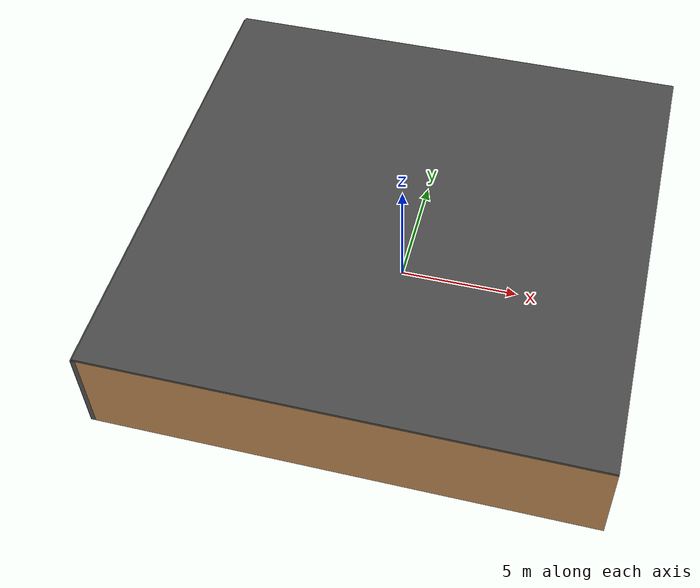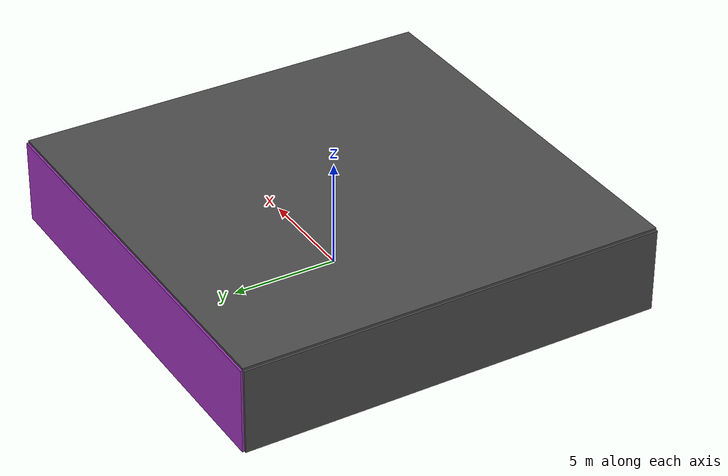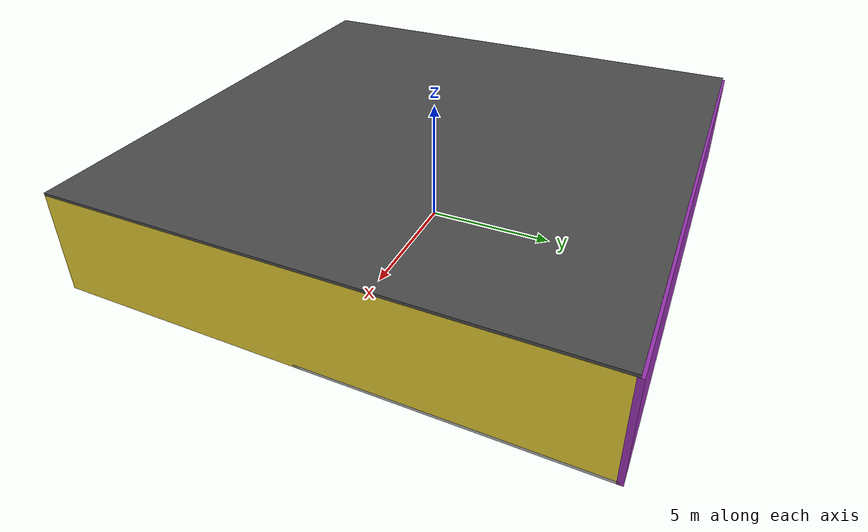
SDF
<sdf version="1.4">
 <world name="default">
  <physics type="ode">
   <max_step_size>0.001</max_step_size>
   <real_time_factor>1</real_time_factor>
   <real_time_update_rate>1000</real_time_update_rate>
   <gravity>0 0 -9.8</gravity>
  </physics>
  <scene><ambient>0.4 0.4 0.4 1</ambient><background>0.7 0.7 0.7 1</background><shadows>1</shadows></scene>
  <model name="Surrounding">
   <static>1</static>
   <link name="Ceiling">
    <collision name="Ceiling_Collision"><geometry><box><size>20 20 0.1</size></box></geometry></collision>
    <visual name="Ceiling_Visual">
     <geometry><box><size>20 20 0.1</size></box></geometry>
     <material>
      <script><uri>file://media/materials/scripts/gazebo.material</uri><name>Gazebo/DarkGrey</name></script>
     </material>
    </visual>
    <pose>0 0 4.05 0 0 0</pose>
   </link>
   <link name="Wall_South">
    <collision name="Wall_South_Collision">
     <geometry><box><size>20 0 4</size></box></geometry>
     <pose>0 0 2 0 -0 0</pose>
    </collision>
    <visual name="Wall_South_Visual">
     <pose>0 0 2 0 -0 0</pose>
     <geometry><box><size>20 0 4</size></box></geometry>
     <material>
      <script><uri>file://media/materials/scripts/gazebo.material</uri><name>Gazebo/WoodPallet</name></script>
     </material>
    </visual>
    <velocity_decay><linear>0</linear><angular>0</angular></velocity_decay>
    <pose>0 -10 0 0 -0 0</pose>
   </link>
   <link name="Wall_East">
    <collision name="Wall_21_Collision">
     <geometry><box><size>20 0 4</size></box></geometry>
     <pose>0 0 2 0 -0 0</pose>
    </collision>
    <visual name="Wall_21_Visual">
     <pose>0 0 2 0 -0 0</pose>
     <geometry><box><size>20 0 4</size></box></geometry>
     <material>
      <script><uri>file://media/materials/scripts/gazebo.material</uri><name>Gazebo/ZincYellow</name></script>
     </material>
    </visual>
    <velocity_decay><linear>0</linear><angular>0</angular></velocity_decay>
    <pose>10 0 0 0 -0 1.5708</pose>
   </link>
   <link name="Wall_North">
    <collision name="Wall_22_Collision">
     <geometry><box><size>20 0.2 4</size></box></geometry>
     <pose>0 0 2 0 -0 0</pose>
    </collision>
    <visual name="Wall_22_Visual">
     <pose>0 0 2 0 -0 0</pose>
     <geometry><box><size>20 0.2 4</size></box></geometry>
     <material>
      <script><uri>file://media/materials/scripts/gazebo.material</uri><name>Gazebo/PurpleGlow</name></script>
     </material>
    </visual>
    <velocity_decay><linear>0</linear><angular>0</angular></velocity_decay>
    <pose>0 10 0 0 -0 0</pose>
   </link>
   <link name="Wall_West">
    <collision name="Wall_23_Collision">
     <geometry><box><size>20 0.2 4</size></box></geometry>
     <pose>0 0 2 0 -0 0</pose>
    </collision>
    <visual name="Wall_23_Visual">
     <pose>0 0 2 0 -0 0</pose>
     <geometry><box><size>20 0.2 4</size></box></geometry>
     <material>
      <script><uri>file://media/materials/scripts/gazebo.material</uri><name>Gazebo/Road</name></script>
     </material>
    </visual>
    <velocity_decay><linear>0</linear><angular>0</angular></velocity_decay>
    <pose>-10 0 0 0 0 -1.5708</pose>
   </link>
   <link name="Ground_link">
    <collision name="collision">
     <pose>0 0 .05 0 -0 0</pose>
     <geometry><box><size>20 20 0.1</size></box></geometry>
    </collision>
    <visual name="visual">
     <pose>0 0 .05 0 -0 0</pose>
     <geometry><box><size>20 20 0.1</size></box></geometry>
     <material>
      <script><uri>file://media/materials/scripts/gazebo.material</uri><name>Gazebo/PioneerBody</name></script>
     </material>
    </visual>
   </link>
   <static>1</static>
  </model>
  <spherical_coordinates>
   <surface_model>EARTH_WGS84</surface_model>
   <latitude_deg>0</latitude_deg>
   <longitude_deg>0</longitude_deg>
   <elevation>0</elevation>
   <heading_deg>0</heading_deg>
  </spherical_coordinates>
  <light name="lightball_0" type="diffuse">
   <diffuse>0.8 0.8 0.8 1</diffuse>
   <specular>0.2 0.2 0.2 1</specular>
   <attenuation>
    <range>100</range>
    <constant>0.7</constant>
    <linear>0.01</linear>
    <quadratic>0.001</quadratic>
   </attenuation>
   <direction>-0.5 0.1 -0.9</direction>
   <pose>-7.54292767034 -4.13270267252 0.706684938992 0 0 0</pose>
  </light>
  <light name="lightball_1" type="diffuse">
   <diffuse>0.8 0.8 0.8 1</diffuse>
   <specular>0.2 0.2 0.2 1</specular>
   <attenuation>
    <range>100</range>
    <constant>0.7</constant>
    <linear>0.01</linear>
    <quadratic>0.001</quadratic>
   </attenuation>
   <direction>-0.5 0.1 -0.9</direction>
   <pose>4.55095508575 -6.15621156155 3.57149684272 0 0 0</pose>
  </light>
  <light name="lightball_2" type="diffuse">
   <diffuse>0.8 0.8 0.8 1</diffuse>
   <specular>0.2 0.2 0.2 1</specular>
   <attenuation>
    <range>100</range>
    <constant>0.7</constant>
    <linear>0.01</linear>
    <quadratic>0.001</quadratic>
   </attenuation>
   <direction>-0.5 0.1 -0.9</direction>
   <pose>-7.43275579764 -3.80731818884 3.63153314545 0 0 0</pose>
  </light>
  <light name="lightball_3" type="diffuse">
   <diffuse>0.8 0.8 0.8 1</diffuse>
   <specular>0.2 0.2 0.2 1</specular>
   <attenuation>
    <range>100</range>
    <constant>0.7</constant>
    <linear>0.01</linear>
    <quadratic>0.001</quadratic>
   </attenuation>
   <direction>-0.5 0.1 -0.9</direction>
   <pose>-2.41612080505 -2.08616503591 3.5857431071 0 0 0</pose>
  </light>
  <light name="lightball_4" type="diffuse">
   <diffuse>0.8 0.8 0.8 1</diffuse>
   <specular>0.2 0.2 0.2 1</specular>
   <attenuation>
    <range>100</range>
    <constant>0.7</constant>
    <linear>0.01</linear>
    <quadratic>0.001</quadratic>
   </attenuation>
   <direction>-0.5 0.1 -0.9</direction>
   <pose>-6.37357638737 4.15255106938 0.607191106311 0 0 0</pose>
  </light>
  <light name="lightball_5" type="diffuse">
   <diffuse>0.8 0.8 0.8 1</diffuse>
   <specular>0.2 0.2 0.2 1</specular>
   <attenuation>
    <range>100</range>
    <constant>0.7</constant>
    <linear>0.01</linear>
    <quadratic>0.001</quadratic>
   </attenuation>
   <direction>-0.5 0.1 -0.9</direction>
   <pose>-3.27498823409 -5.93491398683 2.4038400561 0 0 0</pose>
  </light>
  <include>
   <uri>model://construction_cone</uri>
   <pose>-8.30307373281 6.48191655841 0 0 0 2.94104813404</pose>
  </include>
  <include>
   <uri>model://robocup_3Dsim_goal</uri>
   <pose>-4.62297208025 -4.75328253744 0 0 0 1.80779782144</pose>
  </include>
  <include>
   <uri>model://robocup_3Dsim_goal</uri>
   <pose>3.76930694897 -2.13119583792 0 0 0 1.52862400519</pose>
  </include>
 </world>
</sdf>

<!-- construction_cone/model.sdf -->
<sdf version="1.5">
  <model name="Construction Cone">
    <link name="link">
      <collision name="collision">
        <geometry>
          <mesh>
            <scale>10 10 10</scale>
            <uri>file://isr-testbed/construction_cone/meshes/construction_cone.dae</uri>
          </mesh>
        </geometry>
      </collision>
      <visual name="visual">
        <geometry>
          <mesh>
            <scale>10 10 10</scale>
            <uri>file://isr-testbed/construction_cone/meshes/construction_cone.dae</uri>
          </mesh>
        </geometry>
      </visual>
    </link>
  </model>
</sdf>

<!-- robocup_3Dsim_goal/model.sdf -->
<sdf version="1.5">
  <model name="robocup_3d_goal">
    <static>true</static>
    <link name="left_post">
      <pose>0 1.05 0.45 0 0 0</pose>
      <collision name="collision">
        <geometry>
          <cylinder>
            <radius>0.05</radius>
            <length>0.9</length>
          </cylinder>
        </geometry>
      </collision>
      <visual name="visual">
        <geometry>
          <cylinder>
            <radius>0.05</radius>
            <length>0.9</length>
          </cylinder>
        </geometry>
        <material>
          <script>
            <uri>file://media/materials/scripts/gazebo.material</uri>
            <name>Gazebo/ZincYellow</name>
          </script>
        </material>
      </visual>
    </link>
    <link name="left_support_horiz_lower">
      <pose>0.30 1.05 0.01 0 0 0</pose>
      <collision name="collision">
        <geometry>
          <box>
            <size>0.50 0.02 0.02</size>
          </box>
        </geometry>
      </collision>
      <visual name="visual">
        <geometry>
          <box>
            <size>0.50 0.02 0.02</size>
          </box>
        </geometry>
        <material>
          <script>
            <uri>file://media/materials/scripts/gazebo.material</uri>
            <name>Gazebo/White</name>
          </script>
        </material>
      </visual>
    </link>
    <link name="left_support_horiz_upper">
      <pose>0.30 1.05 0.79 0 0 0</pose>
      <collision name="collision">
        <geometry>
          <box>
            <size>0.50 0.02 0.02</size>
          </box>
        </geometry>
      </collision>
      <visual name="visual">
        <geometry>
          <box>
            <size>0.50 0.02 0.02</size>
          </box>
        </geometry>
        <material>
          <script>
            <uri>file://media/materials/scripts/gazebo.material</uri>
            <name>Gazebo/White</name>
          </script>
        </material>
      </visual>
    </link>
    <link name="left_support_vertical">
      <pose>0.56 1.05 0.4 0 1.5708 0</pose>
      <collision name="collision">
        <geometry>
          <box>
            <size>0.80 0.02 0.02</size>
          </box>
        </geometry>
      </collision>
      <visual name="visual">
        <geometry>
          <box>
            <size>0.80 0.02 0.02</size>
          </box>
        </geometry>
        <material>
          <script>
            <uri>file://media/materials/scripts/gazebo.material</uri>
            <name>Gazebo/White</name>
          </script>
        </material>
      </visual>
    </link>
    <link name="right_support_horiz_lower">
      <pose>0.30 -1.05 0.01 0 0 0</pose>
      <collision name="collision">
        <geometry>
          <box>
            <size>0.50 0.02 0.02</size>
          </box>
        </geometry>
      </collision>
      <visual name="visual">
        <geometry>
          <box>
            <size>0.50 0.02 0.02</size>
          </box>
        </geometry>
        <material>
          <script>
            <uri>file://media/materials/scripts/gazebo.material</uri>
            <name>Gazebo/White</name>
          </script>
        </material>
      </visual>
    </link>
    <link name="right_support_horiz_upper">
      <pose>0.30 -1.05 0.79 0 0 0</pose>
      <collision name="collision">
        <geometry>
          <box>
            <size>0.50 0.02 0.02</size>
          </box>
        </geometry>
      </collision>
      <visual name="visual">
        <geometry>
          <box>
            <size>0.50 0.02 0.02</size>
          </box>
        </geometry>
        <material>
          <script>
            <uri>file://media/materials/scripts/gazebo.material</uri>
            <name>Gazebo/White</name>
          </script>
        </material>
      </visual>
    </link>
    <link name="right_support_vertical">
      <pose>0.56 -1.05 0.4 0 1.5708 0</pose>
      <collision name="collision">
        <geometry>
          <box>
            <size>0.80 0.02 0.02</size>
          </box>
        </geometry>
      </collision>
      <visual name="visual">
        <geometry>
          <box>
            <size>0.80 0.02 0.02</size>
          </box>
        </geometry>
        <material>
          <script>
            <uri>file://media/materials/scripts/gazebo.material</uri>
            <name>Gazebo/White</name>
          </script>
        </material>
      </visual>
    </link>
    <link name="center_support_horiz_lower">
      <pose>0.56 0 0.01 0 1.5708 0</pose>
      <collision name="collision">
        <geometry>
          <box>
            <size>0.02 2.08 0.02</size>
          </box>
        </geometry>
      </collision>
      <visual name="visual">
        <geometry>
          <box>
            <size>0.02 2.08 0.02</size>
          </box>
        </geometry>
        <material>
          <script>
            <uri>file://media/materials/scripts/gazebo.material</uri>
            <name>Gazebo/White</name>
          </script>
        </material>
      </visual>
    </link>
    <link name="center_support_horiz_upper">
      <pose>0.56 0 0.79 0 1.5708 0</pose>
      <collision name="collision">
        <geometry>
          <box>
            <size>0.02 2.08 0.02</size>
          </box>
        </geometry>
      </collision>
      <visual name="visual">
        <geometry>
          <box>
            <size>0.02 2.08 0.02</size>
          </box>
        </geometry>
        <material>
          <script>
            <uri>file://media/materials/scripts/gazebo.material</uri>
            <name>Gazebo/White</name>
          </script>
        </material>
      </visual>
    </link>
    <link name="right_post">
      <pose>0 -1.05 0.45 0 0 0</pose>
      <collision name="collision">
        <geometry>
          <cylinder>
            <radius>0.05</radius>
            <length>0.9</length>
          </cylinder>
        </geometry>
      </collision>
      <visual name="visual">
        <geometry>
          <cylinder>
            <radius>0.05</radius>
            <length>0.9</length>
          </cylinder>
        </geometry>
        <material>
          <script>
            <uri>file://media/materials/scripts/gazebo.material</uri>
            <name>Gazebo/ZincYellow</name>
          </script>
        </material>
      </visual>
    </link>
    <link name="crossbar">
      <pose>0 0 0.85 1.57 1.57 0</pose>
      <collision name="collision">
        <geometry>
          <cylinder>
            <radius>0.05</radius>
            <length>2.0</length>
          </cylinder>
        </geometry>
      </collision>
      <visual name="visual">
        <geometry>
          <cylinder>
            <radius>0.05</radius>
            <length>2.0</length>
          </cylinder>
        </geometry>
        <material>
          <script>
            <uri>file://media/materials/scripts/gazebo.material</uri>
            <name>Gazebo/ZincYellow</name>
          </script>
        </material>
      </visual>
    </link>
    <link name="center_net">
      <pose>0.56 0 0.40 0 0 0</pose>
      <collision name="collision">
        <geometry>
          <box>
            <size>0.01 2.1 0.80</size>
          </box>
        </geometry>
      </collision>
      <visual name="visual">
        <geometry>
          <box>
            <size>0.01 2.1 0.80</size>
          </box>
        </geometry>
        <material>
          <script>
            <uri>model://../model_source/models/robocup09_spl_field/materials/scripts/</uri>
            <uri>model://../model_source/models/robocup09_spl_field/materials/textures/</uri>
            <name>RoboCup/Net</name>
          </script>
        </material>
      </visual>
    </link>
    <link name="left_net">
      <pose>0.30 1.05 0.40 0 0 0</pose>
      <collision name="collision">
        <geometry>
          <box>
            <size>0.50 0.01 0.76</size>
          </box>
        </geometry>
      </collision>
      <visual name="visual">
        <geometry>
          <box>
            <size>0.50 0.01 0.76</size>
          </box>
        </geometry>
        <material>
          <script>
            <uri>model://../model_source/models/robocup09_spl_field/materials/scripts/</uri>
            <uri>model://../model_source/models/robocup09_spl_field/materials/textures/</uri>
            <name>RoboCup/Net</name>
          </script>
        </material>
      </visual>
    </link>
    <link name="right_net">
      <pose>0.30 -1.05 0.40 0 0 0</pose>
      <collision name="collision">
        <geometry>
          <box>
            <size>0.50 0.01 0.76</size>
          </box>
        </geometry>
      </collision>
      <visual name="visual">
        <geometry>
          <box>
            <size>0.50 0.01 0.76</size>
          </box>
        </geometry>
        <material>
          <script>
            <uri>model://../model_source/models/robocup09_spl_field/materials/scripts/</uri>
            <uri>model://../model_source/models/robocup09_spl_field/materials/textures/</uri>
            <name>RoboCup/Net</name>
          </script>
        </material>
      </visual>
    </link>
  </model>
</sdf>
